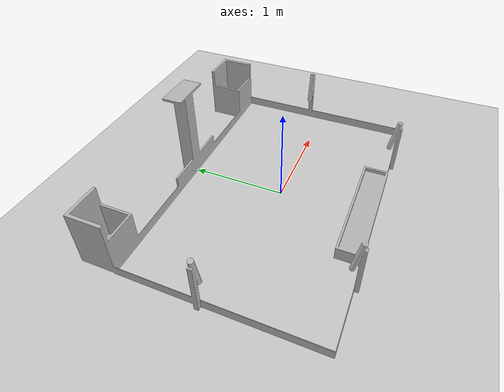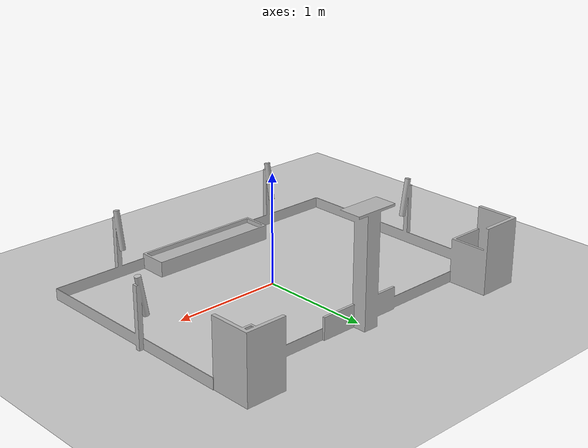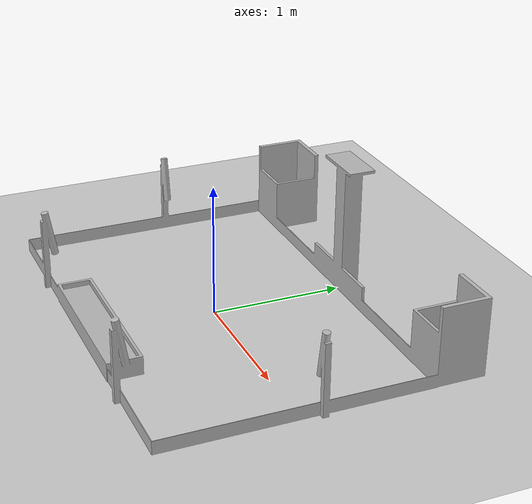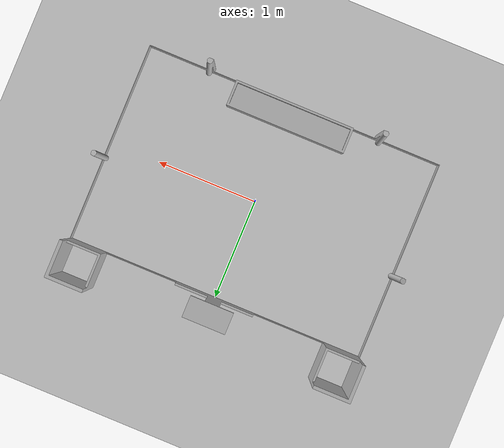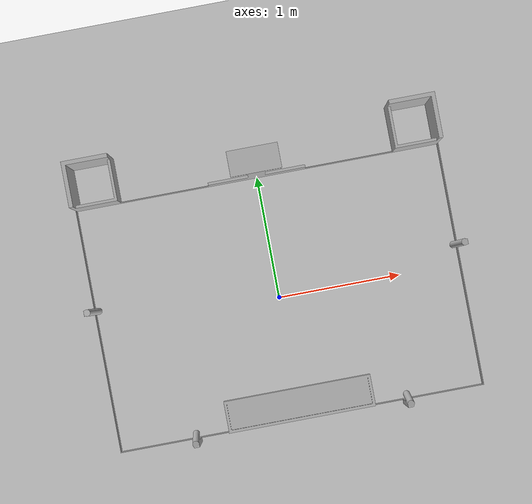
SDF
<?xml version="1.0" ?>
<sdf version="1.5">
    <world name="default">

        <model name="ground_plane">
            <static>true</static>
            <link name="link">
            <collision name="collision">
                <geometry>
                <plane>
                    <normal>0 0 1</normal>
                    <size>1000 1000</size>
                </plane>
                </geometry>
                <surface>
                <friction>
                    <ode>
                    <mu>100</mu>
                    <mu2>50</mu2>
                    </ode>
                </friction>
                </surface>
            </collision>
            <visual name="visual">
                <cast_shadows>false</cast_shadows>
                <geometry>
                <plane>
                    <normal>0 0 1</normal>
                    <size>1000 1000</size>
                </plane>
                </geometry>
                <material>
                <script>
                    <uri>file://media/materials/scripts/gazebo.material</uri>
                    <name>Gazebo/Grey</name>
                </script>
                </material>
            </visual>
            </link>
        </model>

        <include>
            <uri>model://sun</uri>
        </include>

        <model name="table">
            <static>true</static>
            <pose>0 0 0 0 0 0</pose>
            <link name="link">
                <visual name="visual">
                    <geometry>
                        <mesh>
                            <uri>model://snd_gazebo/meshes/terrain_2018.dae</uri>
                            <scale>1 1 1</scale>
                        </mesh>
                    </geometry>
                </visual>
                <collision name="collision">
                    <geometry>
                        <mesh>
                            <uri>model://snd_gazebo/meshes/terrain_2018.dae</uri>
                            <scale>1 1 1</scale>
                        </mesh>
                    </geometry>
                </collision>
            </link>
        </model>

    </world>
</sdf>
